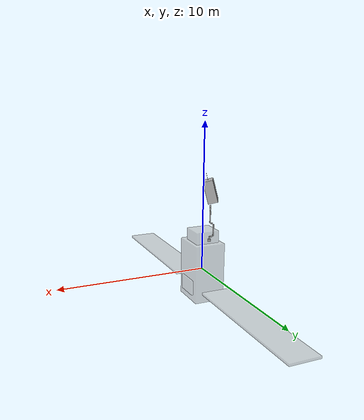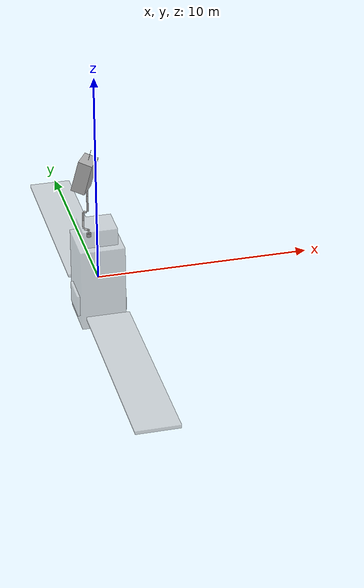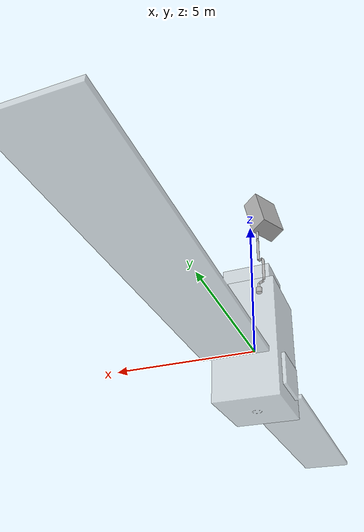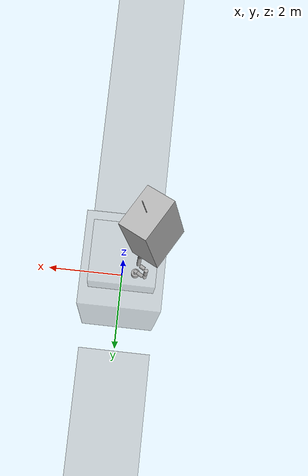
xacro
<?xml version="1.0" ?>
<robot xmlns:xacro="http://wiki.ros.org/xacro" name="FREND">
  <xacro:include filename="./robot.xacro"/>
  <xacro:include filename="./cv.xacro"/>

  <link name="world">
      <inertial>
      <mass value="0"/>
      <origin rpy="0 0 0" xyz="0 0 0"/>
      <inertia ixx="0" ixy="0" ixz="0"
               iyy="0" iyz="0" izz="0"/>
    </inertial>
  </link>

  <joint name="$(arg prefix)world_to_client" type="floating">
    <parent link="world"/>
    <child link="$(arg prefix)client"/>
  </joint>

  <joint name="$(arg prefix)world_to_base" type="floating">
    <parent link="world"/>
    <child link="$(arg prefix)base_link"/>
  </joint>

</robot>

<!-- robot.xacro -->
<robot xmlns:xacro="http://wiki.ros.org/xacro" name="FREND">
  <xacro:arg name="prefix" default=""/>
  <xacro:property name="mass_scale" value="1" />
  <xacro:property name="rval" value="0.7"/>
  <xacro:property name="gval" value="0.7"/>
  <xacro:property name="bval" value="0.7"/>

  <mujoco>
    <compiler fusestatic="false" inertiafromgeom="false" />
  </mujoco>

    <!-- Base link is referred to as "MRV in NG's docs"-->
  <link name="$(arg prefix)base_link">
    <visual>
      <origin rpy="0 0 0" xyz="0 0 0"/>
      <geometry>
        <box size="2.068 2.372 3.975"/>
      </geometry>
      <material name="transparent_gray">
        <color rgba="${rval} ${gval} ${bval} 0.5"/>
      </material>
    </visual>
    <inertial>
      <mass value="${4469*mass_scale}"/>
      <origin rpy="0 0 0" xyz="0 0 0"/>
      <inertia ixx="${7979.775268*mass_scale}" ixy="0" ixz="0"
               iyy="${7477.102148*mass_scale}" iyz="0" izz="${3688.045229*mass_scale}"/>
    </inertial>
    <collision>
      <origin rpy="0 0 0" xyz="0 0 0"/>
      <geometry>
        <box size="2.068 2.372 3.975"/>
      </geometry>
    </collision>
  </link>

    <!-- Joint/Link 0-->
  <joint name="$(arg prefix)joint0" type="fixed">
  <parent link="$(arg prefix)base_link"/>
    <child link="$(arg prefix)link0"/>
    <origin rpy="0 0 -2.0969" xyz="-0.3182 0.3182 1.9875"/>

  </joint>

  <link name="$(arg prefix)link0">
    <visual>
      <origin rpy="0 0 0" xyz="0 0 0.0894"/>
      <geometry>
        <cylinder length="0.178765" radius="0.1"/> <!-- We make link0 half the length of D1 in NG's doc.-->
      </geometry>
      <material name="black">
        <color rgba="${rval} ${gval} ${bval} 1"/>
      </material>
    </visual>
    <inertial>
      <mass value="${15.8469*mass_scale}"/>
      <origin rpy="0 0 0" xyz="0 0 0"/>
      <inertia ixx="${0.089080800*mass_scale}" ixy="0" ixz="0"
               iyy="${0.089080800*mass_scale}" iyz="0" izz="${0.07923450*mass_scale}"/>
    </inertial>
    <collision>
      <origin rpy="0 0 0" xyz="0 0 0.0894"/>
      <geometry>
        <cylinder length="0.178765" radius="0.1"/>
      </geometry>
    </collision>
  </link>

  <!-- Joint/Link 1-->
  <joint name="$(arg prefix)joint1" type="revolute">
  <parent link="$(arg prefix)link0"/>
    <child link="$(arg prefix)link1"/>
    <origin rpy="0 0 0" xyz="0 0 0.178765"/>
    <axis xyz="0 0 1"/>
    <dynamics damping="0" friction="0"/>
    <limit effort="150.0" lower="-2.792526803" upper="2.792526803" velocity="0.06981317008"/>
  </joint>

  <link name="$(arg prefix)link1">
    <visual>
      <origin rpy="0 0 0" xyz="0 0 0.0894"/>
      <geometry>
        <cylinder length="0.178765" radius="0.045"/>
      </geometry>
      <material name="black">
        <color rgba="${rval} ${gval} ${bval} 1"/>
      </material>
    </visual>
    <inertial>
      <mass value="${21.4021*mass_scale}"/>
      <origin rpy="0 0 0" xyz="0 0 0"/>
      <inertia ixx="${0.07836099*mass_scale}" ixy="0" ixz="0"
               iyy="${0.07836099*mass_scale}" iyz="0" izz="${0.02675263*mass_scale}"/>
    </inertial>
    <collision>
      <origin rpy="0 0 0" xyz="0 0 0.0894"/>
      <geometry>
        <cylinder length="0.178765" radius="0.045"/>
      </geometry>
    </collision>
  </link>

 <!-- Joint/Link 2-->
  <joint name="$(arg prefix)joint2" type="revolute">
  <parent link="$(arg prefix)link1"/>
    <child link="$(arg prefix)link2"/>
    <origin rpy="1.5707963267948966 0 0" xyz="0 0 0.178765"/>
    <axis xyz="0 0 1"/>
    <dynamics damping="0" friction="0"/>
    <limit effort="150.0" lower="-1.745329252" upper="1.745329252" velocity="0.06981317008"/>
  </joint>

    <link name="$(arg prefix)link2">
    <visual>
      <origin rpy="0 0 0" xyz="0 0 0.12954"/>
      <geometry>
        <cylinder length="0.15908" radius="0.045"/>
      </geometry>
      <material name="black">
        <color rgba="${rval} ${gval} ${bval} 1"/>
      </material>
    </visual>
    <inertial>
      <mass value="${16.5794*mass_scale}"/>
      <origin rpy="0 0 0" xyz="0 0 0"/>
      <inertia ixx="${0.11988023*mass_scale}" ixy="0" ixz="0"
               iyy="${0.11988023*mass_scale}" iyz="0" izz="${0.02072425*mass_scale}"/>
    </inertial>
    <collision>
      <origin rpy="0 0 0" xyz="0 0 0.12954"/>
      <geometry>
        <cylinder length="0.15908" radius="0.045"/>
      </geometry>
    </collision>
  </link>

  <!-- Joint/Link 3-->
  <joint name="$(arg prefix)joint3" type="revolute">
  <parent link="$(arg prefix)link2"/>
    <child link="$(arg prefix)link3"/>
    <origin rpy="-1.5707963267948966 0 0" xyz="0 0 0.25908"/>
    <axis xyz="0 0 1"/>
    <dynamics damping="0" friction="0"/>
    <limit effort="150.0" lower="-2.967059728" upper="2.565634" velocity="0.1047197551"/>
  </joint>

    <link name="$(arg prefix)link3">
    <visual>
      <origin rpy="0 0 0" xyz="0 0 0.45"/>
      <geometry>
        <cylinder length="0.8" radius="0.045"/>
      </geometry>
      <material name="black">
        <color rgba="${rval} ${gval} ${bval} 1"/>
      </material>
    </visual>
    <inertial>
      <mass value="${18.0461*mass_scale}"/>
      <origin rpy="0 0 0" xyz="0 0 0"/>
      <inertia ixx="${1.43189056*mass_scale}" ixy="0" ixz="0"
               iyy="${1.43189056*mass_scale}" iyz="0" izz="${0.0255763*mass_scale}"/>
    </inertial>
    <collision>
      <origin rpy="0 0 0" xyz="0 0 0.45"/>
      <geometry>
        <cylinder length="0.8" radius="0.045"/>
      </geometry>
    </collision>
  </link>

  <!-- Joint/Link 4-->
  <joint name="$(arg prefix)joint4" type="revolute">
  <parent link="$(arg prefix)link3"/>
    <child link="$(arg prefix)link4"/>
    <origin rpy="1.5707963267948966 0 0" xyz="0 0 0.9"/>
    <axis xyz="0 0 1"/>
    <dynamics damping="0" friction="0"/>
    <limit effort="150.0" lower="-2.967059728" upper="2.617993878" velocity="0.1047197551"/>
  </joint>

  <link name="$(arg prefix)link4">
    <visual>
      <origin rpy="0 0 0" xyz="0 0 -0.111125"/>
      <geometry>
        <cylinder length="0.12225" radius="0.045"/>
      </geometry>
      <material name="black">
        <color rgba="${rval} ${gval} ${bval} 1"/>
      </material>
    </visual>
    <inertial>
      <mass value="${9.7351*mass_scale}"/>
      <origin rpy="0 0 0" xyz="0 0 0"/>
      <inertia ixx="${0.05850536*mass_scale}" ixy="0" ixz="0"
               iyy="${0.05850536*mass_scale}" iyz="0" izz="${0.01216888*mass_scale}"/>
    </inertial>
    <collision>
      <origin rpy="0 0 0" xyz="0 0 -0.111125"/>
      <geometry>
        <cylinder length="0.12225" radius="0.045"/>
      </geometry>
    </collision>
  </link>

  <!-- Joint/Link 5-->
  <joint name="$(arg prefix)joint5" type="revolute">
  <parent link="$(arg prefix)link4"/>
    <child link="$(arg prefix)link5"/>
    <origin rpy="-1.5707963267948966 0 0" xyz="0 0 -0.22225"/>
    <axis xyz="0 0 1"/>
    <dynamics damping="0" friction="0"/>
    <limit effort="150.0" lower="-4.36332313" upper="2.617993878" velocity="0.1221730476"/>
  </joint>

  <link name="$(arg prefix)link5">
    <visual>
      <origin rpy="0 0 0" xyz="0 0 0.450085"/>
      <geometry>
        <cylinder length="0.8017" radius="0.045"/>
      </geometry>
      <material name="black">
        <color rgba="${rval} ${gval} ${bval} 1"/>
      </material>
    </visual>
    <inertial>
      <mass value="${7.7539*mass_scale}"/>
      <origin rpy="0 0 0" xyz="0 0 0"/>
      <inertia ixx="${0.73100869*mass_scale}" ixy="0" ixz="0"
               iyy="${0.73100869*mass_scale}" iyz="0" izz="${0.00969238*mass_scale}"/>
    </inertial>
    <collision>
      <origin rpy="0 0 0" xyz="0 0 0.4500"/>
      <geometry>
        <cylinder length="0.8017" radius="0.045"/>
      </geometry>
    </collision>
  </link>

  <!-- Joint/Link 6-->
  <joint name="$(arg prefix)joint6" type="revolute">
  <parent link="$(arg prefix)link5"/>
    <child link="$(arg prefix)link6"/>
    <origin rpy="1.5707963267948966 0 0" xyz="0 0 0.90017"/>
    <axis xyz="0 0 1"/>
    <dynamics damping="0" friction="0"/>
    <limit effort="150.0" lower="-1.919862177" upper="1.919862177" velocity="0.1221730476"/>
  </joint>

  <link name="$(arg prefix)link6">
    <visual>
      <origin rpy="0 0 0" xyz="0 0 0"/>
      <geometry>
        <sphere radius="0.045"/>
      </geometry>
      <material name="black">
        <color rgba="${rval} ${gval} ${bval} 1"/>
      </material>
    </visual>
    <inertial>
      <mass value="${5.5820*mass_scale}"/>
      <origin rpy="0 0 0" xyz="0 0 0"/>
      <inertia ixx="${0.01064042*mass_scale}" ixy="0" ixz="0"
               iyy="${0.01064042*mass_scale}" iyz="0" izz="${0.00697750*mass_scale}"/>
    </inertial>
    <collision>
      <origin rpy="0 0 0" xyz="0 0 0"/>
      <geometry>
        <sphere radius="0.045"/>
      </geometry>
    </collision>
  </link>

  <!--Joint/Link 7-->
  <joint name="$(arg prefix)joint7" type="revolute">
  <parent link="$(arg prefix)link6"/>
    <child link="$(arg prefix)link7"/>
    <origin rpy="-1.5707963267948966 0 0" xyz="0 0 0"/>
    <axis xyz="0 0 1"/>
    <dynamics damping="0" friction="0"/>
    <limit effort="150.0" lower="-4.310963252" upper="1.169370599" velocity="0.12217304762"/>
  </joint>

  <link name="$(arg prefix)link7">
    <visual>
      <origin rpy="0 0 0" xyz="0 0 0.20395"/>
      <geometry>
        <cylinder length="0.3079" radius="0.045"/>
      </geometry>
      <material name="black">
        <color rgba="${rval} ${gval} ${bval} 1"/>
      </material>
    </visual>
    <inertial>
      <mass value="${5.2186*mass_scale}"/>
      <origin rpy="0 0 0" xyz="0 0 0"/>
      <inertia ixx="${0.11721416*mass_scale}" ixy="0" ixz="0"
               iyy="${0.11721416*mass_scale}" iyz="0" izz="${0.00652325*mass_scale}"/>
    </inertial>
    <collision>
      <origin rpy="0 0 0" xyz="0 0 0.20395"/>
      <geometry>
        <cylinder length="0.3079" radius="0.045"/>
      </geometry>
    </collision>
  </link>

  <!-- Wrist joint -->
  <joint name="$(arg prefix)wrist_joint" type="fixed">
  <parent link="$(arg prefix)link7"/>
    <child link="$(arg prefix)wrist"/>
    <origin rpy="0 0 0" xyz="0 0 0.2979"/>
  </joint>

  <link name="$(arg prefix)wrist">
      <inertial>
      <mass value="0"/>
      <origin rpy="0 0 0" xyz="0 0 0"/>
      <inertia ixx="0" ixy="0" ixz="0"
               iyy="0" iyz="0" izz="0"/>
    </inertial>
  </link>

  <!-- MEP offset and MEP link-->
  <!-- MEP is attached in parallel with wrist-->
  <joint name="$(arg prefix)mep_offset" type="fixed">
  <parent link="$(arg prefix)link7"/>
    <child link="$(arg prefix)ee_body"/>
    <origin rpy="0 -0.261799167 -1.570795" xyz="0.376 -0.170 0.5009"/>
  </joint>

  <link name="$(arg prefix)ee_body">
    <visual>
      <origin rpy="0 0 0" xyz="0 0 0.759"/>
      <geometry>
        <box size="0.66 0.967 1.518"/>
      </geometry>
      <material name="black">
        <color rgba="${rval} ${gval} ${bval} 1"/>
      </material>
    </visual>
    <inertial>
      <mass value="${411*mass_scale}"/>
      <origin rpy="0 0 0" xyz="0 0 0"/>
      <inertia ixx="${347.7191863*mass_scale}" ixy="0" ixz="0"
               iyy="${330.611688*mass_scale}" iyz="0" izz="${46.946098253*mass_scale}"/>
    </inertial>
    <collision>
      <origin rpy="0 0 0" xyz="0 0 0.759"/>
      <geometry>
        <box size="0.66 0.967 1.518"/>
      </geometry>
    </collision>
  </link>

  <!-- EE CoM -->
  <joint name="$(arg prefix)ee_com_joint" type="fixed">
  <parent link="$(arg prefix)ee_body"/>
    <child link="$(arg prefix)ee_com"/>
    <origin rpy="0 0 0" xyz="0 0 0.4675"/>
  </joint>

  <link name="$(arg prefix)ee_com">
    <inertial>
      <mass value="0"/>
      <origin rpy="0 0 0" xyz="0 0 0"/>
      <inertia ixx="0" ixy="0" ixz="0"
               iyy="0" iyz="0" izz="0"/>
    </inertial>
  </link>

  <!-- EE peg -->
  <joint name="$(arg prefix)ee_peg_joint" type="fixed">
  <parent link="$(arg prefix)ee_body"/>
    <child link="$(arg prefix)ee_peg"/>
    <origin rpy="0 0 0" xyz="0 0 1.3101"/>
  </joint>

  <link name="$(arg prefix)ee_peg">
    <visual>
      <origin rpy="0 0 0" xyz="0 0 0.36"/>
      <geometry>
        <cylinder length="0.72" radius="0.008"/>
      </geometry>
      <material name="white">
        <color rgba="${rval} ${gval} ${bval} 1"/>
      </material>
    </visual>
    <inertial>
      <mass value="${10*mass_scale}"/>
      <origin rpy="0 0 0" xyz="0 0 0"/>
      <inertia ixx="${1.1101*mass_scale}" ixy="0" ixz="0"
               iyy="${1.1101*mass_scale}" iyz="0" izz="${0.0125*mass_scale}"/>
    </inertial>
    <collision>
      <origin rpy="0 0 0" xyz="0 0 0.36"/>
      <geometry>
        <cylinder length="0.72" radius="0.008"/>
      </geometry>
    </collision>
  </link>

 <!-- Peg center-->
  <joint name="$(arg prefix)peg_center_joint" type="fixed">
  <parent link="$(arg prefix)ee_peg"/>
    <child link="$(arg prefix)peg_center"/>
    <origin rpy="0 0 0" xyz="0 0 0.36"/>
  </joint>

  <link name="$(arg prefix)peg_center">
  <inertial>
      <mass value="0"/>
      <origin rpy="0 0 0" xyz="0 0 0"/>
      <inertia ixx="0" ixy="0" ixz="0"
               iyy="0" iyz="0" izz="0"/>
    </inertial>
  </link>

  <!-- EE Tip-->
  <joint name="$(arg prefix)ee_tip_joint" type="fixed">
  <parent link="$(arg prefix)ee_peg"/>
    <child link="$(arg prefix)ee_tip"/>
    <origin rpy="0 0 0" xyz="0 0 0.72"/>
  </joint>

    <link name="$(arg prefix)ee_tip">
    <inertial>
      <mass value="0"/>
      <origin rpy="0 0 0" xyz="0 0 0"/>
      <inertia ixx="0" ixy="0" ixz="0"
               iyy="0" iyz="0" izz="0"/>
    </inertial>

  </link>

  <!-- Cam link-->
  <joint name="$(arg prefix)cam_joint" type="fixed">
  <parent link="$(arg prefix)base_link"/>
    <child link="$(arg prefix)cam_link"/>
    <origin rpy="0 0 0" xyz="0.889 0.548 1.953"/>
  </joint>

  <link name="$(arg prefix)cam_link">
    <inertial>
      <mass value="0"/>
      <origin rpy="0 0 0" xyz="0 0 0"/>
      <inertia ixx="0" ixy="0" ixz="0"
               iyy="0" iyz="0" izz="0"/>
    </inertial>
  </link>

</robot>

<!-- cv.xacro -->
<robot xmlns:xacro="http://wiki.ros.org/xacro" name="FREND">
  <xacro:arg name="prefix" default=""/>
  <xacro:include filename="./sim_tube_geom.xacro"/>
  <xacro:include filename="./sim_nozzle_geom.xacro"/>
  <xacro:property name="mass_scale" value="1" />
  <xacro:property name="rval" value="0.7"/>
  <xacro:property name="gval" value="0.7"/>
  <xacro:property name="bval" value="0.7"/>

  <link name="$(arg prefix)client">
    <visual>
      <origin rpy="0 0 0" xyz="0 0 0"/>
      <geometry>
        <mesh filename="package://on_orbit/urdf/meshes/full_cv.stl" scale="1 1 1"/>
      </geometry>
      <material name="transparent_gray">
        <color rgba="${rval} ${gval} ${bval} 0.5"/>
      </material>
    </visual>
    <collision>
    <origin rpy="0 0 0" xyz="0 0 0"/>
      <geometry>
        <mesh filename="package://on_orbit/urdf/meshes/full_cv.stl" scale="1 1 1"/>
      </geometry>
    </collision>
    <inertial>
      <mass value="${1050*mass_scale}"/>
      <origin rpy="0 0 0" xyz="0 0 0"/>
      <inertia ixx="${1792.419738*mass_scale}" ixy="0" ixz="0"
               iyy="${2015.632675*mass_scale}" iyz="0" izz="${630.7312375*mass_scale}"/>
    </inertial>
  </link>

  <joint name="$(arg prefix)client_to_nozzle" type="fixed">
    <parent link="$(arg prefix)client"/>
    <child link="$(arg prefix)nozzle"/>
    <origin rpy="0 0 0" xyz="0 0 -1.9897"/>
  </joint>

  <link name="$(arg prefix)nozzle">
    <inertial>
      <mass value="0"/>
      <origin rpy="0 0 0" xyz="0 0 0"/>
      <inertia ixx="0" ixy="0" ixz="0"
               iyy="0" iyz="0" izz="0"/>
    </inertial>
  </link>

  <joint name="$(arg prefix)nozzle_to_capture_box" type="fixed">
    <parent link="$(arg prefix)nozzle"/>
    <child link="$(arg prefix)capture_box"/>
    <origin rpy="0 0 0" xyz="0 0 -0.07"/>
  </joint>

  <link name="$(arg prefix)capture_box">
    <inertial>
      <mass value="0"/>
      <origin rpy="0 0 0" xyz="0 0 0"/>
      <inertia ixx="0" ixy="0" ixz="0"
               iyy="0" iyz="0" izz="0"/>
    </inertial>
  </link>

  <link name="$(arg prefix)cone_vertex">
    <inertial>
      <mass value="0"/>
      <origin rpy="0 0 0" xyz="0 0 0"/>
      <inertia ixx="0" ixy="0" ixz="0"
               iyy="0" iyz="0" izz="0"/>
    </inertial>
  </link>

  <joint name="$(arg prefix)nozzle_to_cone_vertex" type="fixed">
    <parent link="$(arg prefix)nozzle"/>
    <child link="$(arg prefix)cone_vertex"/>
    <origin rpy="0 0 0" xyz="0 0 0.51"/>
  </joint>

  <link name="$(arg prefix)hole">
    <inertial>
      <mass value="0"/>
      <origin rpy="0 0 0" xyz="0 0 0"/>
      <inertia ixx="0" ixy="0" ixz="0"
               iyy="0" iyz="0" izz="0"/>
    </inertial>
  </link>

  <joint name="$(arg prefix)nozzle_to_hole" type="fixed">
    <parent link="$(arg prefix)nozzle"/>
    <child link="$(arg prefix)hole"/>
    <origin rpy="0 0 0" xyz="0 0 0.429"/>
  </joint>

  <link name="$(arg prefix)goal">
    <inertial>
      <mass value="0"/>
      <origin rpy="0 0 0" xyz="0 0 0"/>
      <inertia ixx="0" ixy="0" ixz="0"
               iyy="0" iyz="0" izz="0"/>
    </inertial>
  </link>

  <joint name="$(arg prefix)nozzle_to_goal" type="fixed">
    <parent link="$(arg prefix)nozzle"/>
    <child link="$(arg prefix)goal"/>
    <origin rpy="0 0 0" xyz="0 0 0.4585"/>
  </joint>

  <link name="$(arg prefix)hole_end">
      <inertial>
      <mass value="0"/>
      <origin rpy="0 0 0" xyz="0 0 0"/>
      <inertia ixx="0" ixy="0" ixz="0"
               iyy="0" iyz="0" izz="0"/>
    </inertial>
        <collision>
        <origin rpy="0 0 0" xyz="0 0 0.5"/>
        <geometry>
          <box size="1 1 1"/>
        </geometry>
      </collision>
  </link>

  <joint name="$(arg prefix)nozzle_to_hole_end" type="fixed">
    <parent link="$(arg prefix)nozzle"/>
    <child link="$(arg prefix)hole_end"/>
    <origin rpy="0 0 0" xyz="0 0 0.4785"/>
  </joint>

  <xacro:tube_geom num="0" theta="0" prefix="$(arg prefix)"/>
  <xacro:tube_geom num="1" theta="${pi/4}" prefix="$(arg prefix)"/>
  <xacro:tube_geom num="2" theta="${pi/2}" prefix="$(arg prefix)"/>
  <xacro:tube_geom num="3" theta="${3*pi/4}" prefix="$(arg prefix)"/>
  <xacro:tube_geom num="4" theta="${pi}" prefix="$(arg prefix)"/>
  <xacro:tube_geom num="5" theta="${5*pi/4}" prefix="$(arg prefix)"/>
  <xacro:tube_geom num="6" theta="${3*pi/2}" prefix="$(arg prefix)"/>
  <xacro:tube_geom num="7" theta="${7*pi/4}" prefix="$(arg prefix)"/>

  <xacro:nozzle_geom num="0" theta="0" prefix="$(arg prefix)"/>
  <xacro:nozzle_geom num="1" theta="${pi/4}" prefix="$(arg prefix)"/>
  <xacro:nozzle_geom num="2" theta="${pi/2}" prefix="$(arg prefix)"/>
  <xacro:nozzle_geom num="3" theta="${3*pi/4}" prefix="$(arg prefix)"/>
  <xacro:nozzle_geom num="4" theta="${pi}" prefix="$(arg prefix)"/>
  <xacro:nozzle_geom num="5" theta="${5*pi/4}" prefix="$(arg prefix)"/>
  <xacro:nozzle_geom num="6" theta="${3*pi/2}" prefix="$(arg prefix)"/>
  <xacro:nozzle_geom num="7" theta="${7*pi/4}" prefix="$(arg prefix)"/>
</robot>

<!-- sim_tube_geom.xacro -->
<robot xmlns:xacro="http://www.ros.org/wiki/xacro">
  <xacro:include filename="./sim_nozzle_geom.xacro"/>
  <xacro:property name="tube_length" value="0.0445" />
  <xacro:property name="tube_wall_width" value="0.0066" />
  <xacro:property name="tube_box_width" value="0.02" />
  <xacro:property name="tube_outer_diameter" value="0.032" />
  <xacro:property name="tube_middle_diameter" value="${tube_outer_diameter - tube_wall_width}" />
  <xacro:macro name="tube_geom" params="num theta prefix">
    <link name="${prefix}tube_geom${num}">
      <inertial>
        <mass value="0"/>
        <origin rpy="0 0 0" xyz="0 0 0"/>
        <inertia ixx="0" ixy="0" ixz="0" iyy="0" iyz="0" izz="0"/>
      </inertial>
      <collision>
        <origin rpy="0 0 0" xyz="0 0 0"/>
        <geometry>
          <box size="${tube_wall_width} ${tube_box_width} ${tube_length}"/>
        </geometry>
      </collision>
    </link>
    <joint name="${prefix}nozzle_to_tube_geom${num}" type="fixed">
      <parent link="${prefix}nozzle"/>
      <child link="${prefix}tube_geom${num}"/>
      <origin rpy="0 0 ${theta}" xyz="${tube_middle_diameter/2*cos(theta)} ${tube_middle_diameter/2*sin(theta)} ${tube_length/2 + nozzle_length}"/>
    </joint>
  </xacro:macro>
</robot>

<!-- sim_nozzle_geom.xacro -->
<robot xmlns:xacro="http://www.ros.org/wiki/xacro">
  <xacro:property name="nozzle_length" value="0.429" />
  <xacro:property name="nozzle_geom_length" value="0.44712" />
  <xacro:property name="nozzle_wall_width" value="0.005" />
  <xacro:property name="nozzle_box_width" value="0.125" />
  <xacro:property name="throat_outer_diameter" value="0.032" />
  <xacro:property name="throat_middle_diameter" value="${throat_outer_diameter - nozzle_wall_width}" />
  <xacro:property name="entry_outer_diameter" value="0.284" />
  <xacro:property name="entry_middle_diameter" value="${entry_outer_diameter - nozzle_wall_width}" />
  <xacro:property name="entry_inner_rad" value="${(entry_outer_diameter - 2*nozzle_wall_width)/2}" />
  <xacro:property name="dist_from_centerline" value="${(throat_middle_diameter + entry_middle_diameter)/4}" />
  <xacro:property name="slope_angle" value="0.285672797" />
  <xacro:macro name="nozzle_geom" params="num theta prefix">
    <link name="${prefix}nozzle_geom${num}">

      <inertial>
        <mass value="0"/>
        <origin rpy="0 0 0" xyz="0 0 0"/>
        <inertia ixx="0" ixy="0" ixz="0" iyy="0" iyz="0" izz="0"/>
      </inertial>
      <collision>
        <origin rpy="0 0 0" xyz="0 0 0"/>
        <geometry>
          <box size="${nozzle_wall_width} ${nozzle_box_width} ${nozzle_geom_length}"/>
        </geometry>
      </collision>
    </link>
    <joint name="${prefix}nozzle_to_nozzle_geom${num}" type="fixed">
      <parent link="${prefix}nozzle"/>
      <child link="${prefix}nozzle_geom${num}"/>
      <origin rpy="0 ${-slope_angle} ${theta}" xyz="${dist_from_centerline*cos(theta)} ${dist_from_centerline*sin(theta)} ${nozzle_geom_length/2*cos(slope_angle) + nozzle_wall_width*sin(slope_angle)}"/>
    </joint>

    <link name="${prefix}nozzle_rim${num}">
      <inertial>
        <mass value="0"/>
        <origin rpy="0 0 0" xyz="0 0 0"/>
        <inertia ixx="0" ixy="0" ixz="0" iyy="0" iyz="0" izz="0"/>
      </inertial>
    </link>
    <joint name="${prefix}nozzle_to_nozzle_rim${num}" type="fixed">
      <parent link="${prefix}nozzle"/>
      <child link="${prefix}nozzle_rim${num}"/>
      <origin rpy="0 ${-slope_angle} ${theta}" xyz="${entry_inner_rad*cos(theta)} ${entry_inner_rad*sin(theta)} 0"/>
    </joint>
  </xacro:macro>
</robot>
